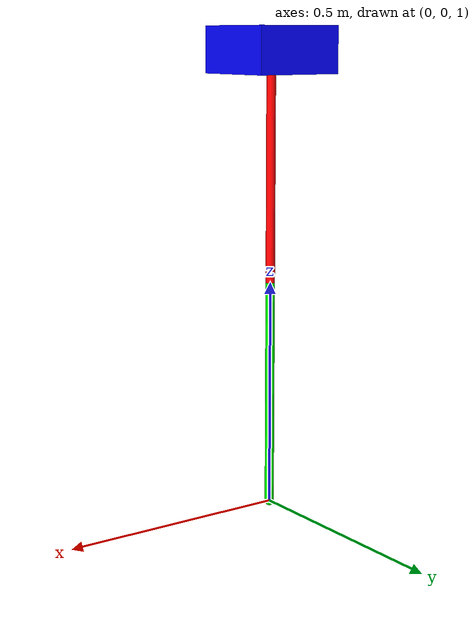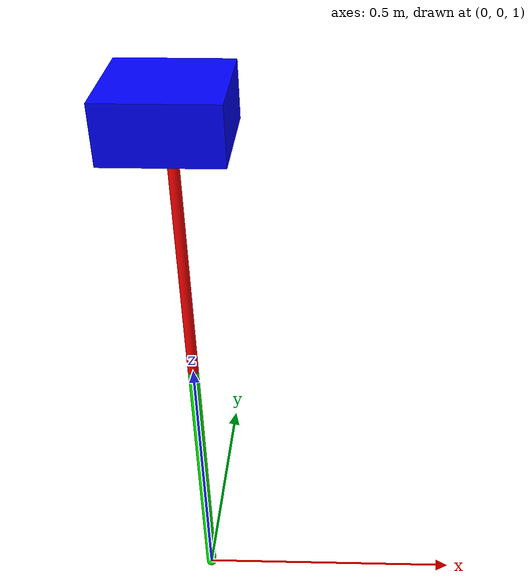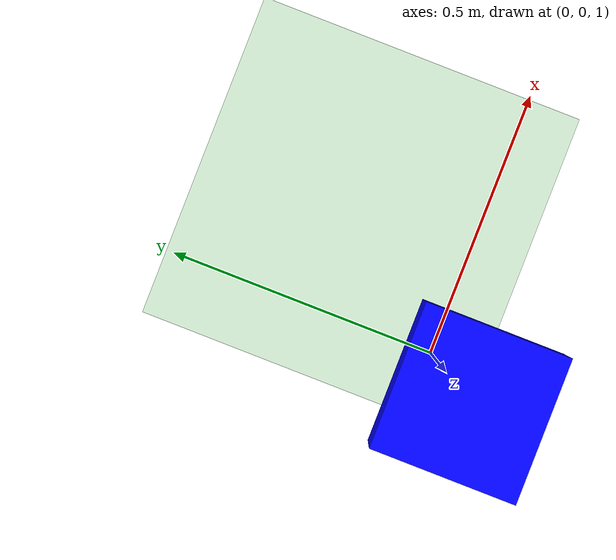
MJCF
<mujoco model="cart_double_pendulum_massless_links">
    <compiler angle="degree"/>
    <option gravity="0 0 -9.81"/>

    <worldbody>
        <!-- Ground plane -->
        <geom type="plane" size="5 5 0.1" rgba="0.8 0.9 0.8 1"/>

        <!-- Cart body -->
        <body name="cart" pos="0 0 2">
            <geom type="box" size="0.1 0.1 0.05" rgba="0 0 1 1" mass="0.6"/>
            <joint name="cart_slide" type="slide" axis="1 0 0" range="-4 4" limited="true"/>

            <!-- First link (rod) -->
            <body name="link1" pos="0 0 0">
                <inertial mass="0.2" diaginertia="4.1667e-3 4.1667e-3 4.1667e-3" pos="0 0 -0.25"/>
                <joint name="hinge1" type="hinge" axis="0 1 0" limited="false"/>
                <geom type="capsule" fromto="0 0 0  0 0 -0.5" size="0.01" mass="1e-6" rgba="1 0 0 1"/>
                <!-- Second link (light rod) -->
                <body name="link2" pos="0 0 -0.5">
                    <inertial mass="0.2" diaginertia="4.1667e-3 4.1667e-3 4.1667e-3" pos="0 0 -0.25"/>
                    <joint name="hinge2" type="hinge" axis="0 1 0" limited="false"/>
                    <geom type="capsule" fromto="0 0 0  0 0 -0.5" size="0.01" mass="1e-6" rgba="0 1 0 1"/>
                </body>
            </body>

        </body>
    </worldbody>

    <actuator>
        <!-- Motor on the cart slide joint -->
        <motor joint="cart_slide" ctrlrange="-10 10" gear="1"/>
    </actuator>
</mujoco>
